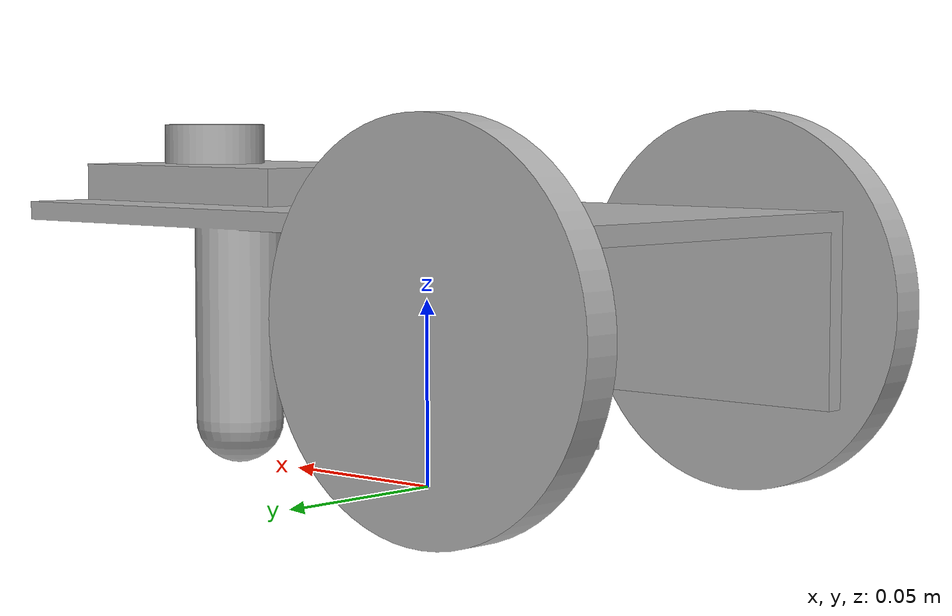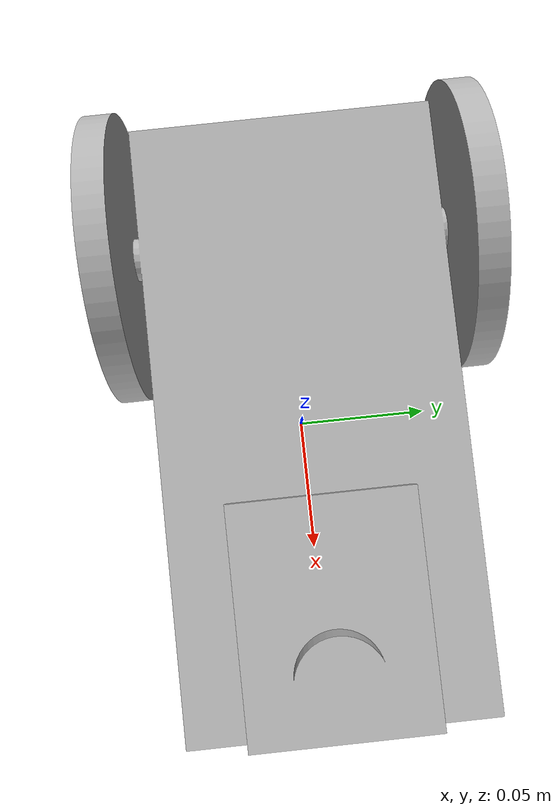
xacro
<?xml version="1.0" ?>
<robot name="BRICKS" xmlns:xacro="http://www.ros.org/wiki/xacro">

<xacro:include filename="$(find BRICKS_description)/urdf/materials.xacro" />
<xacro:include filename="$(find BRICKS_description)/urdf/BRICKS.trans" />
<xacro:include filename="$(find BRICKS_description)/urdf/BRICKS.gazebo" />
<link name="base_link">
  <inertial>
    <origin xyz="-0.006683271838673498 0.0023682708650185117 0.0603107509568688" rpy="0 0 0"/>
    <mass value="1.317489111222947"/>
    <inertia ixx="0.001739" iyy="0.005522" izz="0.006384" ixy="0.0" iyz="0.0" ixz="0.000193"/>
  </inertial>
  <visual>
    <origin xyz="0 0 0" rpy="0 0 0"/>
    <geometry>
      <mesh filename="package://BRICKS_description/meshes/base_link.stl" scale="0.001 0.001 0.001"/>
    </geometry>
    <material name="silver"/>
  </visual>
  <collision>
    <origin xyz="0 0 0" rpy="0 0 0"/>
    <geometry>
      <mesh filename="package://BRICKS_description/meshes/base_link.stl" scale="0.001 0.001 0.001"/>
    </geometry>
  </collision>
</link>

<link name="whell_2_1">
  <inertial>
    <origin xyz="2.924111011937125e-07 0.005000270865018398 -3.5820948354053916e-07" rpy="0 0 0"/>
    <mass value="0.6165375582669965"/>
    <inertia ixx="0.00039" iyy="0.000771" izz="0.00039" ixy="0.0" iyz="-0.0" ixz="-0.0"/>
  </inertial>
  <visual>
    <origin xyz="0.070143 -0.057368 -0.050083" rpy="0 0 0"/>
    <geometry>
      <mesh filename="package://BRICKS_description/meshes/whell_2_1.stl" scale="0.001 0.001 0.001"/>
    </geometry>
    <material name="silver"/>
  </visual>
  <collision>
    <origin xyz="0.070143 -0.057368 -0.050083" rpy="0 0 0"/>
    <geometry>
      <mesh filename="package://BRICKS_description/meshes/whell_2_1.stl" scale="0.001 0.001 0.001"/>
    </geometry>
  </collision>
</link>

<link name="whell_1">
  <inertial>
    <origin xyz="2.924111005275787e-07 -0.004999729134982152 -3.5820948369319483e-07" rpy="0 0 0"/>
    <mass value="0.6165375582669967"/>
    <inertia ixx="0.00039" iyy="0.000771" izz="0.00039" ixy="0.0" iyz="0.0" ixz="0.0"/>
  </inertial>
  <visual>
    <origin xyz="0.070143 0.052632 -0.050083" rpy="0 0 0"/>
    <geometry>
      <mesh filename="package://BRICKS_description/meshes/whell_1.stl" scale="0.001 0.001 0.001"/>
    </geometry>
    <material name="silver"/>
  </visual>
  <collision>
    <origin xyz="0.070143 0.052632 -0.050083" rpy="0 0 0"/>
    <geometry>
      <mesh filename="package://BRICKS_description/meshes/whell_1.stl" scale="0.001 0.001 0.001"/>
    </geometry>
  </collision>
</link>

<link name="lidar_1">
  <inertial>
    <origin xyz="-0.03516976044278524 2.708650183847437e-07 0.006398171828686683" rpy="0 0 0"/>
    <mass value="0.4075053051274938"/>
    <inertia ixx="0.000117" iyy="0.000191" izz="0.000291" ixy="0.0" iyz="0.0" ixz="-9e-06"/>
  </inertial>
  <visual>
    <origin xyz="-0.093072 -0.002368 -0.074905" rpy="0 0 0"/>
    <geometry>
      <mesh filename="package://BRICKS_description/meshes/lidar_1.stl" scale="0.001 0.001 0.001"/>
    </geometry>
    <material name="silver"/>
  </visual>
  <collision>
    <origin xyz="-0.093072 -0.002368 -0.074905" rpy="0 0 0"/>
    <geometry>
      <mesh filename="package://BRICKS_description/meshes/lidar_1.stl" scale="0.001 0.001 0.001"/>
    </geometry>
  </collision>
</link>

<joint name="Rev1" type="continuous">
  <origin xyz="-0.070143 0.057368 0.050083" rpy="0 0 0"/>
  <parent link="base_link"/>
  <child link="whell_2_1"/>
  <axis xyz="0.0 1.0 0.0"/>
</joint>

<joint name="Rev2" type="continuous">
  <origin xyz="-0.070143 -0.052632 0.050083" rpy="0 0 0"/>
  <parent link="base_link"/>
  <child link="whell_1"/>
  <axis xyz="0.0 1.0 0.0"/>
</joint>

<joint name="Rigid6" type="fixed">
  <origin xyz="0.093072 0.002368 0.074905" rpy="0 0 0"/>
  <parent link="base_link"/>
  <child link="lidar_1"/>
</joint>

</robot>

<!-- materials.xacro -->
<robot name="BRICKS" xmlns:xacro="http://www.ros.org/wiki/xacro" >

<material name="silver">
  <color rgba="0.700 0.700 0.700 1.000"/>
</material>

</robot>

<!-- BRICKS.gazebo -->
<robot name="BRICKS" xmlns:xacro="http://www.ros.org/wiki/xacro" >

<xacro:property name="body_color" value="Gazebo/Silver" />

<gazebo>
  <plugin name="control" filename="libgazebo_ros_control.so"/>
</gazebo>
<gazebo reference="base_link">
  <material>${body_color}</material>
  <mu1>3500</mu1>
  <mu2>3500</mu2>
  <selfCollide>true</selfCollide>
  <gravity>true</gravity>
</gazebo>

<gazebo reference="whell_2_1">
  <material>${body_color}</material>
  <mu1>3500</mu1>
  <mu2>3500</mu2>
  <selfCollide>true</selfCollide>
</gazebo>

<gazebo reference="whell_1">
  <material>${body_color}</material>
  <mu1>3500</mu1>
  <mu2>3500</mu2>
  <selfCollide>true</selfCollide>
</gazebo>

<gazebo reference="lidar_1">
  <material>${body_color}</material>
  <mu1>0.2</mu1>
  <mu2>0.2</mu2>
  <selfCollide>true</selfCollide>
</gazebo>
<gazebo>
  <plugin name="differential_drive_controller" filename="libgazebo_ros_diff_drive.so">

    <!-- Plugin update rate in Hz -->
    <updateRate>${1000}</updateRate>

    <!-- Name of left joint, defaults to `left_joint` -->
    <leftJoint>Rev1</leftJoint>

    <!-- Name of right joint, defaults to `right_joint` -->
    <rightJoint>Rev2</rightJoint>

    <!-- The distance from the center of one wheel to the other, in meters, defaults to 0.34 m -->
    <wheelSeparation>0.5380</wheelSeparation>

    <!-- Diameter of the wheels, in meters, defaults to 0.15 m -->
    <wheelDiameter>0.2410</wheelDiameter>

    <!-- Wheel acceleration, in rad/s^2, defaults to 0.0 rad/s^2 -->
    <wheelAcceleration>1.0</wheelAcceleration>

    <!-- Maximum torque which the wheels can produce, in Nm, defaults to 5 Nm -->
    <wheelTorque>20</wheelTorque>

    <!-- Topic to receive geometry_msgs/Twist message commands, defaults to `cmd_vel` -->
    <commandTopic>cmd_vel</commandTopic>

    <!-- Topic to publish nav_msgs/Odometry messages, defaults to `odom` -->
    <odometryTopic>odom</odometryTopic>

    <!-- Odometry frame, defaults to `odom` -->
    <odometryFrame>odom</odometryFrame>

    <!-- Robot frame to calculate odometry from, defaults to `base_footprint` -->
    <robotBaseFrame>base_link</robotBaseFrame>

    <!-- Odometry source, 0 for ENCODER, 1 for WORLD, defaults to WORLD -->
    <odometrySource>1</odometrySource>

    <!-- Set to true to publish transforms for the wheel links, defaults to false -->
    <publishWheelTF>true</publishWheelTF>

    <!-- Set to true to publish transforms for the odometry, defaults to true -->
    <publishOdom>true</publishOdom>

    <!-- Set to true to publish sensor_msgs/JointState on /joint_states for the wheel joints, defaults to false -->
    <publishWheelJointState>true</publishWheelJointState>

    <!-- Set to true to swap right and left wheels, defaults to true -->
    <legacyMode>false</legacyMode>
  </plugin>
</gazebo>
</robot>
